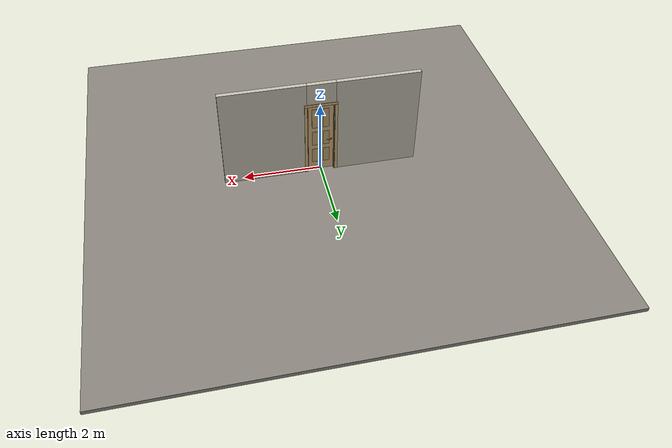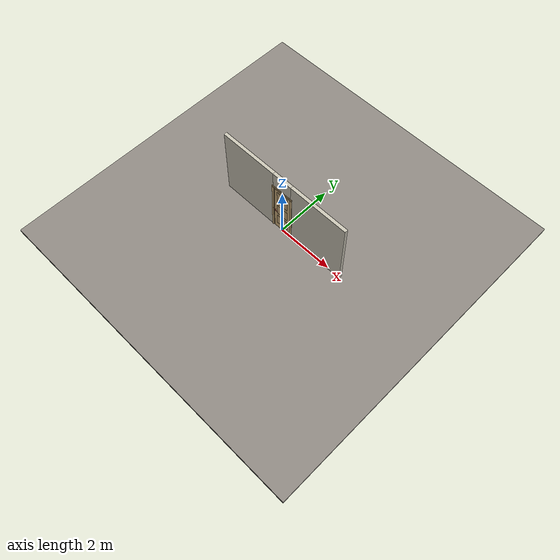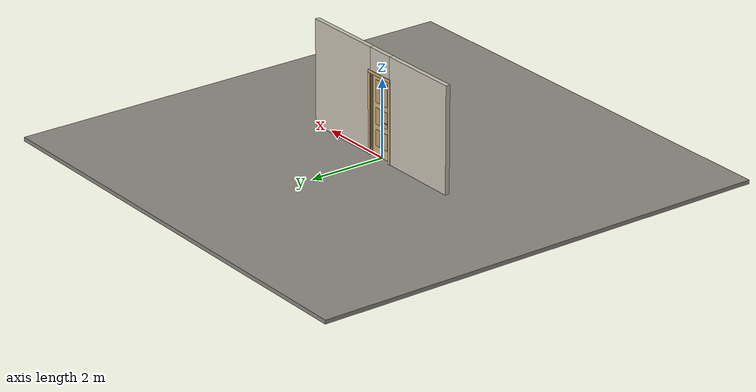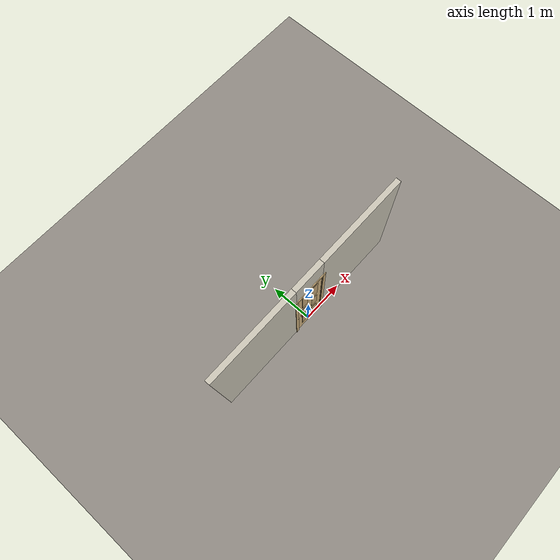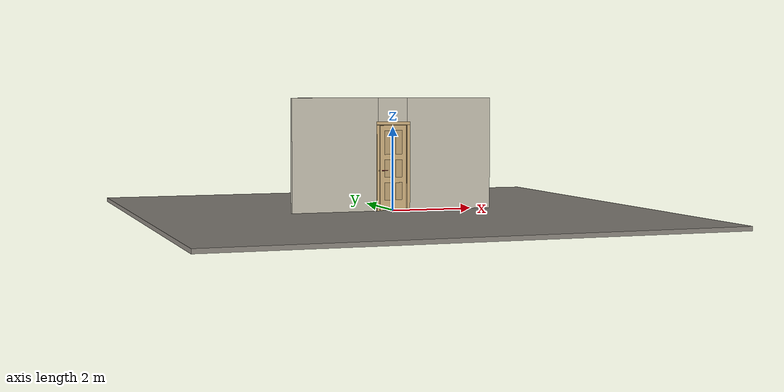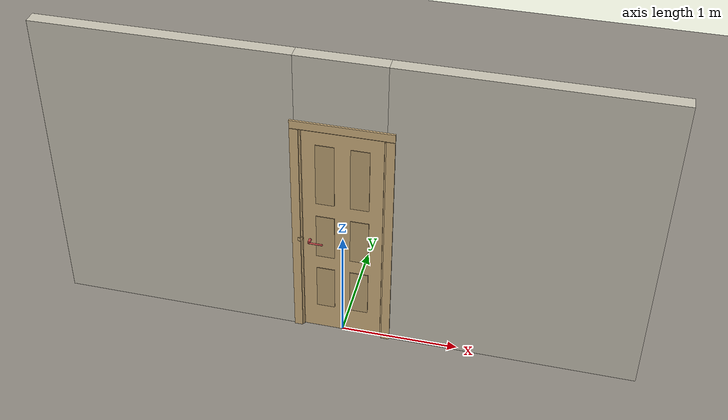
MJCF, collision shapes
<?xml version="1.0" ?>
<mujoco model="db0212_swing_single_full">
  <compiler angle="radian" meshdir="../../hardware" texturedir="../../textures" autolimits="true" inertiafromgeom="false"/>
  <option timestep="0.002" integrator="implicitfast" cone="elliptic" impratio="10" noslip_iterations="3">
    <flag multiccd="enable"/>
  </option>
  <size memory="16M"/>
  <default>
    <geom condim="4" solref="0.005 1" solimp="0.95 0.99 0.001"/>
    <joint solreflimit="0.005 1" solimplimit="0.95 0.99 0.001"/>
    <tendon solreflimit="0.005 1"/>
    <equality solref="0.002 1"/>
  </default>
  <visual>
    <headlight ambient="0.4 0.4 0.4" diffuse="0.7 0.7 0.7" specular="0.2 0.2 0.2"/>
    <quality shadowsize="4096"/>
    <map znear="0.01" zfar="60"/>
  </visual>
  <asset>
    <mesh name="hinge_b1c89c1db8" file="hinge_b1c89c1db8.obj"/>
    <mesh name="hinge_jamb_1d7c7d2bbd" file="hinge_jamb_1d7c7d2bbd.obj"/>
    <mesh name="lever_57205841c3" file="lever_57205841c3.obj"/>
    <material name="mat_floor" rgba="0.55 0.53 0.5 1" specular="0.2" shininess="0.15" reflectance="0"/>
    <material name="mat_wall" rgba="0.78 0.76 0.7 1" specular="0.2" shininess="0.1" reflectance="0"/>
    <material name="mat_leaf" rgba="0.82 0.7 0.5 1" specular="0.2" shininess="0.45" reflectance="0"/>
    <material name="mat_leaf_panel" rgba="0.754 0.644 0.46 1" specular="0.2" shininess="0.45" reflectance="0"/>
    <material name="mat_hinge" rgba="0.65 0.66 0.68 1" specular="0.74" shininess="0.5" reflectance="0.36"/>
    <material name="mat_op_black_matte_metal" rgba="0.05 0.05 0.05 1" specular="0.38" shininess="0.3" reflectance="0.12"/>
    <material name="mat_trim" rgba="0.85 0.66 0.3 1" specular="0.8" shininess="0.75" reflectance="0.4"/>
    <material name="mat_bolt" rgba="0.85 0.66 0.3 1" specular="0.8" shininess="0.75" reflectance="0.4"/>
    <material name="mat_frame" rgba="0.82 0.7 0.5 1" specular="0.2" shininess="0.45" reflectance="0"/>
    <material name="mat_seal" rgba="0.1 0.1 0.1 1" specular="0.2" shininess="0.1" reflectance="0"/>
    <texture name="skybox" type="skybox" builtin="gradient" rgb1="0.6 0.7 0.85" rgb2="0.9 0.92 0.95" width="256" height="256"/>
  </asset>
  <worldbody>
    <light name="sun" pos="1.5 -2.5 4" dir="-0.3 0.5 -0.8" directional="true" diffuse="0.8 0.8 0.8" specular="0.3 0.3 0.3" castshadow="true"/>
    <light name="fill" pos="-1.5 2.5 3" dir="0.3 -0.5 -0.7" directional="true" diffuse="0.35 0.35 0.4" castshadow="false"/>
    <camera name="robot_view" pos="0 -2.511687 1.734312" xyaxes="1 0 0 0 0.26963 0.962964" fovy="52"/>
    <camera name="far_view" pos="0 2.572687 1.734312" xyaxes="-1 0 0 0 -0.26963 0.962964" fovy="52"/>
    <camera name="iso" pos="-1.932062 -2.104938 2.141063" xyaxes="0.741536 -0.670913 0 0.242917 0.268487 0.932151" fovy="46"/>
    <camera name="detail_handle" pos="0.007 -0.875 1.245" xyaxes="0.97561 0.219512 0 -0.070934 0.315262 0.94635" fovy="38"/>
    <geom name="floor" type="box" size="6 6 0.05" pos="0 0 -0.05" material="mat_floor" group="0" contype="1" conaffinity="1" friction="0.8 0.005 0.0001" density="2400"/>
    <geom name="wall_left" type="box" size="1.0585 0.0575 1.35" pos="-1.4415 0.0305 1.35" material="mat_wall" group="0" contype="1" conaffinity="1" friction="0.6 0.005 0.0001" density="800"/>
    <geom name="wall_right" type="box" size="1.0735 0.0575 1.35" pos="1.4265 0.0305 1.35" material="mat_wall" group="0" contype="1" conaffinity="1" friction="0.6 0.005 0.0001" density="800"/>
    <geom name="wall_header" type="box" size="0.368 0.0575 0.303" pos="-0.015 0.0305 2.397" material="mat_wall" group="0" contype="1" conaffinity="1" friction="0.6 0.005 0.0001" density="800"/>
    <geom name="hinge_0_jamb" type="mesh" mesh="hinge_jamb_1d7c7d2bbd" pos="0.331 -0.027 0.259" quat="0 0 1 0" material="mat_hinge" group="1" contype="0" conaffinity="0" density="7850"/>
    <geom name="hinge_1_jamb" type="mesh" mesh="hinge_jamb_1d7c7d2bbd" pos="0.331 -0.027 1.025" quat="0 0 1 0" material="mat_hinge" group="1" contype="0" conaffinity="0" density="7850"/>
    <geom name="hinge_2_jamb" type="mesh" mesh="hinge_jamb_1d7c7d2bbd" pos="0.331 -0.027 1.861" quat="0 0 1 0" material="mat_hinge" group="1" contype="0" conaffinity="0" density="7850"/>
    <geom name="jamb_hinge" type="box" size="0.0095 0.0575 1.0225" pos="0.3435 0.0305 1.0225" material="mat_frame" group="0" contype="1" conaffinity="1" friction="0.6 0.005 0.0001" density="400"/>
    <geom name="strike_965_wall_n" type="box" size="0.0245 0.040075 0.0167" pos="-0.3585 0.047925 0.965" material="mat_frame" group="0" contype="1" conaffinity="1" friction="0.6 0.005 0.0001" density="400"/>
    <geom name="strike_965_wall_p" type="box" size="0.0245 0.008 0.0167" pos="-0.3585 -0.01585 0.965" material="mat_frame" group="0" contype="1" conaffinity="1" friction="0.6 0.005 0.0001" density="400"/>
    <geom name="strike_965_ramp" type="box" size="0.0245 0.01649 0.0167" pos="-0.363136 -0.028673 0.965" quat="0.977148 0 0 -0.212558" material="mat_frame" group="0" contype="1" conaffinity="1" friction="0.12 0.005 0.0001" density="400"/>
    <geom name="strike_965_back" type="box" size="0.01615 0.00785 0.0167" pos="-0.36685 0 0.965" material="mat_frame" group="0" contype="1" conaffinity="1" friction="0.6 0.005 0.0001" density="400"/>
    <geom name="jamb_strike_0" type="box" size="0.0245 0.0575 0.47415" pos="-0.3585 0.0305 0.47415" material="mat_frame" group="0" contype="1" conaffinity="1" friction="0.6 0.005 0.0001" density="400"/>
    <geom name="jamb_strike_1" type="box" size="0.0245 0.0575 0.53165" pos="-0.3585 0.0305 1.51335" material="mat_frame" group="0" contype="1" conaffinity="1" friction="0.6 0.005 0.0001" density="400"/>
    <geom name="jamb_head" type="box" size="0.368 0.0575 0.0095" pos="-0.015 0.0305 2.0545" material="mat_frame" group="0" contype="1" conaffinity="1" friction="0.6 0.005 0.0001" density="400"/>
    <geom name="head_stud" type="box" size="0.368 0.0575 0.015" pos="-0.015 0.0305 2.079" material="mat_wall" group="0" contype="1" conaffinity="1" friction="0.6 0.005 0.0001" density="500"/>
    <geom name="stop_hinge" type="box" size="0.0055 0.016 1.0225" pos="0.3285 0.0365 1.0225" material="mat_frame" group="0" contype="1" conaffinity="1" friction="0.6 0.005 0.0001" density="400"/>
    <geom name="stop_strike" type="box" size="0.0055 0.016 1.0225" pos="-0.3285 0.0365 1.0225" material="mat_frame" group="0" contype="1" conaffinity="1" friction="0.6 0.005 0.0001" density="400"/>
    <geom name="stop_head" type="box" size="0.334 0.016 0.0055" pos="0 0.0365 2.0395" material="mat_frame" group="0" contype="1" conaffinity="1" friction="0.6 0.005 0.0001" density="400"/>
    <geom name="seal_hinge" type="box" size="0.004 0.002 1.0225" pos="0.331 0.022 1.0225" material="mat_seal" group="1" contype="0" conaffinity="0" density="1100"/>
    <geom name="seal_strike" type="box" size="0.004 0.002 1.0225" pos="-0.331 0.022 1.0225" material="mat_seal" group="1" contype="0" conaffinity="0" density="1100"/>
    <geom name="seal_head" type="box" size="0.314 0.002 0.008" pos="0 0.022 2.033" material="mat_seal" group="1" contype="0" conaffinity="0" density="1100"/>
    <geom name="casing_l_n" type="box" size="0.035 0.008 1.032" pos="-0.383 -0.035 1.0225" material="mat_frame" group="2" contype="0" conaffinity="0" density="400"/>
    <geom name="casing_r_n" type="box" size="0.035 0.008 1.032" pos="0.383 -0.035 1.0225" material="mat_frame" group="2" contype="0" conaffinity="0" density="400"/>
    <geom name="casing_h_n" type="box" size="0.418 0.008 0.035" pos="0 -0.035 2.094" material="mat_frame" group="2" contype="0" conaffinity="0" density="400"/>
    <geom name="casing_l_p" type="box" size="0.035 0.008 1.032" pos="-0.383 0.096 1.0225" material="mat_frame" group="2" contype="0" conaffinity="0" density="400"/>
    <geom name="casing_r_p" type="box" size="0.035 0.008 1.032" pos="0.383 0.096 1.0225" material="mat_frame" group="2" contype="0" conaffinity="0" density="400"/>
    <geom name="casing_h_p" type="box" size="0.418 0.008 0.035" pos="0 0.096 2.094" material="mat_frame" group="2" contype="0" conaffinity="0" density="400"/>
    <site name="approach_point" pos="0 -1.5 0" quat="1 0 0 0" size="0.05" rgba="0.2 0.9 0.2 0.5" group="4"/>
    <site name="goal_point" pos="0 1.5 0" quat="1 0 0 0" size="0.05" rgba="0.2 0.9 0.2 0.5" group="4"/>
    <site name="door_plane_center" pos="0 0 1.0225" quat="1 0 0 0" size="0.02" rgba="0.2 0.9 0.2 0.5" group="4"/>
    <body name="leaf" pos="0.334 0 0">
      <inertial pos="-0.322869 -0.000543 1.025711" mass="22.313608" quat="0.500939 -0.498659 0.501321 0.499075" diaginertia="0.862716678 7.735570636 8.59187304"/>
      <joint name="leaf_hinge" type="hinge" axis="0 0 1" pos="-0.003 -0.027 0" limited="true" range="0 2.356194" solreflimit="0.02 1" damping="0.119633" frictionloss="0.53957" armature="0.02"/>
      <geom name="leaf_slab" type="box" size="0.33 0.02 1.016" pos="-0.333 0 1.025" material="mat_leaf" group="0" contype="1" conaffinity="1" friction="0.35 0.005 0.0001" density="1"/>
      <geom name="leaf_panel_0_n" type="box" size="0.0775 0.003 0.209032" pos="-0.1905 -0.023 0.461552" material="mat_leaf_panel" group="1" contype="0" conaffinity="0" density="1"/>
      <geom name="leaf_panel_0_p" type="box" size="0.0775 0.003 0.209032" pos="-0.1905 0.023 0.461552" material="mat_leaf_panel" group="1" contype="0" conaffinity="0" density="1"/>
      <geom name="leaf_panel_1_n" type="box" size="0.0775 0.003 0.209032" pos="-0.4755 -0.023 0.461552" material="mat_leaf_panel" group="1" contype="0" conaffinity="0" density="1"/>
      <geom name="leaf_panel_1_p" type="box" size="0.0775 0.003 0.209032" pos="-0.4755 0.023 0.461552" material="mat_leaf_panel" group="1" contype="0" conaffinity="0" density="1"/>
      <geom name="leaf_panel_2_n" type="box" size="0.0775 0.003 0.209032" pos="-0.1905 -0.023 1.009616" material="mat_leaf_panel" group="1" contype="0" conaffinity="0" density="1"/>
      <geom name="leaf_panel_2_p" type="box" size="0.0775 0.003 0.209032" pos="-0.1905 0.023 1.009616" material="mat_leaf_panel" group="1" contype="0" conaffinity="0" density="1"/>
      <geom name="leaf_panel_3_n" type="box" size="0.0775 0.003 0.209032" pos="-0.4755 -0.023 1.009616" material="mat_leaf_panel" group="1" contype="0" conaffinity="0" density="1"/>
      <geom name="leaf_panel_3_p" type="box" size="0.0775 0.003 0.209032" pos="-0.4755 0.023 1.009616" material="mat_leaf_panel" group="1" contype="0" conaffinity="0" density="1"/>
      <geom name="leaf_panel_4_n" type="box" size="0.0775 0.003 0.285376" pos="-0.1905 -0.023 1.634024" material="mat_leaf_panel" group="1" contype="0" conaffinity="0" density="1"/>
      <geom name="leaf_panel_4_p" type="box" size="0.0775 0.003 0.285376" pos="-0.1905 0.023 1.634024" material="mat_leaf_panel" group="1" contype="0" conaffinity="0" density="1"/>
      <geom name="leaf_panel_5_n" type="box" size="0.0775 0.003 0.285376" pos="-0.4755 -0.023 1.634024" material="mat_leaf_panel" group="1" contype="0" conaffinity="0" density="1"/>
      <geom name="leaf_panel_5_p" type="box" size="0.0775 0.003 0.285376" pos="-0.4755 0.023 1.634024" material="mat_leaf_panel" group="1" contype="0" conaffinity="0" density="1"/>
      <geom name="hinge_0" type="mesh" mesh="hinge_b1c89c1db8" pos="-0.003 -0.027 0.259" quat="0 0 1 0" material="mat_hinge" group="1" contype="0" conaffinity="0" density="7850"/>
      <geom name="hinge_1" type="mesh" mesh="hinge_b1c89c1db8" pos="-0.003 -0.027 1.025" quat="0 0 1 0" material="mat_hinge" group="1" contype="0" conaffinity="0" density="7850"/>
      <geom name="hinge_2" type="mesh" mesh="hinge_b1c89c1db8" pos="-0.003 -0.027 1.861" quat="0 0 1 0" material="mat_hinge" group="1" contype="0" conaffinity="0" density="7850"/>
      <geom name="leaf_latch_bolt_faceplate" type="box" size="0.0006 0.01235 0.0267" pos="-0.6624 0 0.965" material="mat_bolt" group="1" contype="0" conaffinity="0" density="8500"/>
      <site name="leaf_edge_mid" pos="-0.663 0 1.016" quat="1 0 0 0" size="0.02" rgba="0.2 0.9 0.2 0.5" group="4"/>
      <body name="leaf_handle" pos="-0.603 0 0.965">
        <inertial pos="0.018506 0 0" mass="0.802893" quat="0 0.707107 0.707107 0" diaginertia="0.00100521 0.002430787 0.003331452"/>
        <joint name="leaf_handle_hinge" type="hinge" axis="0 1 0" limited="true" range="0 0.87" damping="0.212416" frictionloss="0.042" stiffness="1" springref="-0.35" armature="0.01"/>
        <geom name="leaf_handle_spindle" type="cylinder" size="0.006 0.028" pos="0 0 0" quat="0.707107 -0.707107 0 0" material="mat_op_black_matte_metal" group="1" contype="0" conaffinity="0" density="7850"/>
        <geom name="leaf_handle_lever_n" type="mesh" mesh="lever_57205841c3" pos="0 -0.02 0" quat="0 0 -0.707107 0.707107" material="mat_op_black_matte_metal" group="1" contype="0" conaffinity="0" density="3000"/>
        <geom name="leaf_handle_lever_col_n" type="capsule" size="0.007 0.053" pos="0.06 -0.075 0" quat="0.707107 0 0.707107 0" material="mat_op_black_matte_metal" group="3" contype="1" conaffinity="1" rgba="0.8 0.3 0.3 0.25" friction="0.7 0.01 0.0001" density="3000"/>
        <geom name="leaf_handle_hub_col_n" type="cylinder" size="0.012 0.022" pos="0 -0.05 0" quat="0.707107 -0.707107 0 0" material="mat_op_black_matte_metal" group="3" contype="1" conaffinity="1" rgba="0.8 0.3 0.3 0.25" friction="0.6 0.005 0.0001" density="3000"/>
        <geom name="leaf_handle_lever_p" type="mesh" mesh="lever_57205841c3" pos="0 0.02 0" quat="0 0 0.707107 0.707107" material="mat_op_black_matte_metal" group="1" contype="0" conaffinity="0" density="3000"/>
        <geom name="leaf_handle_lever_col_p" type="capsule" size="0.007 0.053" pos="0.06 0.075 0" quat="0.707107 0 0.707107 0" material="mat_op_black_matte_metal" group="3" contype="1" conaffinity="1" rgba="0.8 0.3 0.3 0.25" friction="0.7 0.01 0.0001" density="3000"/>
        <geom name="leaf_handle_hub_col_p" type="cylinder" size="0.012 0.022" pos="0 0.05 0" quat="0.707107 -0.707107 0 0" material="mat_op_black_matte_metal" group="3" contype="1" conaffinity="1" rgba="0.8 0.3 0.3 0.25" friction="0.6 0.005 0.0001" density="3000"/>
        <site name="leaf_handle_grip_n" pos="0.096 -0.075 0" quat="1 0 0 0" size="0.012" rgba="0.2 0.9 0.2 0.5" group="4"/>
        <site name="leaf_handle_grip_p" pos="0.096 0.075 0" quat="1 0 0 0" size="0.012" rgba="0.2 0.9 0.2 0.5" group="4"/>
      </body>
      <body name="leaf_latch_bolt" pos="-0.663 0 0.965">
        <inertial pos="0.00865 0 0" mass="0.041419" quat="0.92388 0.382683 0 0" diaginertia="0.000000798 0.000005598 0.000005598"/>
        <joint name="leaf_latch_bolt_slide" type="slide" axis="1 0 0" limited="true" range="0 0.0127" damping="2" frictionloss="0.3" stiffness="300" springref="-0.008333" armature="0.1"/>
        <geom name="leaf_latch_bolt_capsule" type="capsule" size="0.00635 0.015" pos="0.00865 0 0" quat="0.707107 0 -0.707107 0" material="mat_bolt" group="0" contype="1" conaffinity="1" friction="0.2 0.005 0.0001" density="8500"/>
      </body>
    </body>
  </worldbody>
  <tendon>
    <fixed name="leaf_latch_bolt_coupling" limited="true" range="0 10">
      <joint joint="leaf_latch_bolt_slide" coef="1"/>
      <joint joint="leaf_handle_hinge" coef="-0.015679"/>
    </fixed>
  </tendon>
  <sensor>
    <jointpos name="leaf_hinge_pos" joint="leaf_hinge"/>
    <jointvel name="leaf_hinge_vel" joint="leaf_hinge"/>
    <jointpos name="leaf_handle_hinge_pos" joint="leaf_handle_hinge"/>
    <jointvel name="leaf_handle_hinge_vel" joint="leaf_handle_hinge"/>
    <jointpos name="leaf_latch_bolt_slide_pos" joint="leaf_latch_bolt_slide"/>
    <jointvel name="leaf_latch_bolt_slide_vel" joint="leaf_latch_bolt_slide"/>
  </sensor>
</mujoco>
